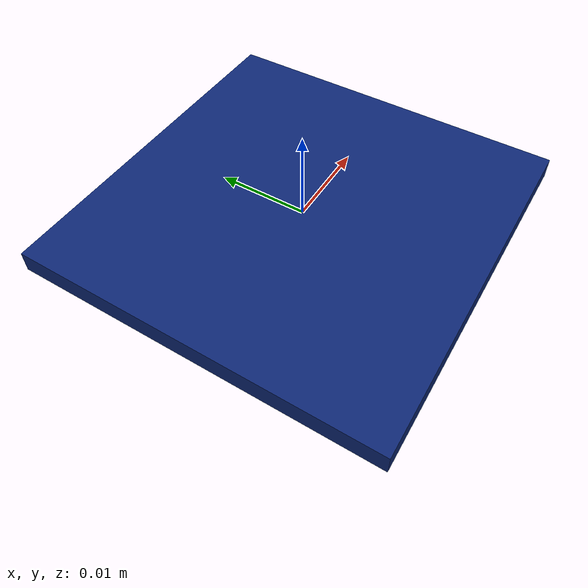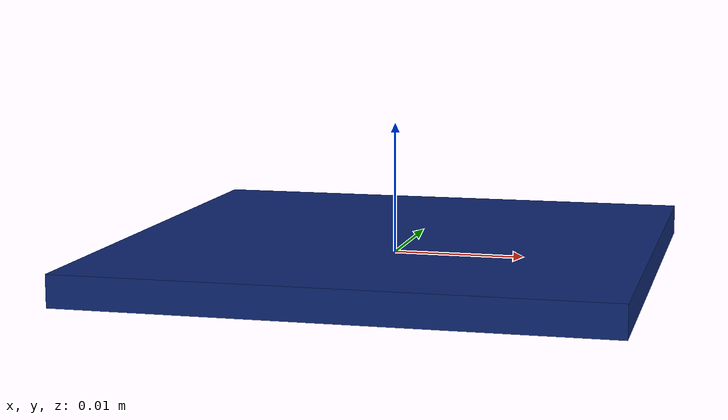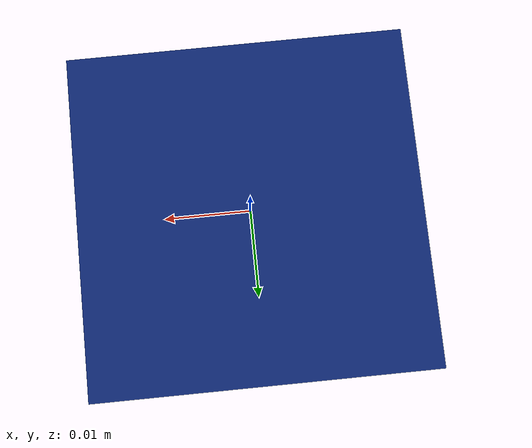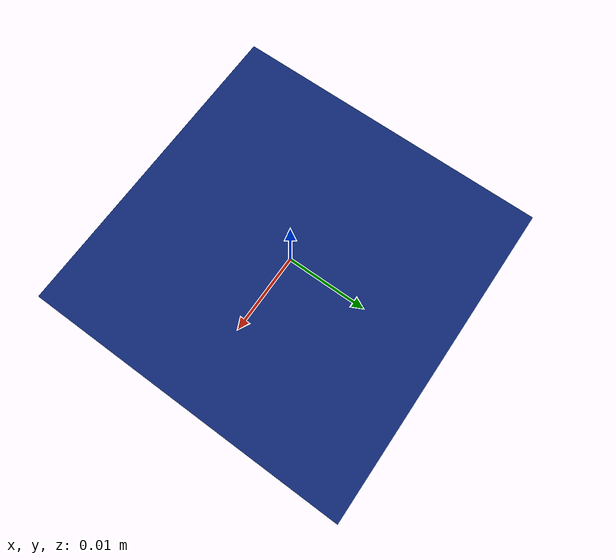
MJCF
<mujoco model="glassSheet">
    <asset>
        <material name="glass_mat" rgba="0.05 0.15 0.45 1.0" specular="1.0" shininess="0.95" reflectance="0.12" />
    </asset>

    <worldbody>
        <body name="glass_sheet" pos="0.000000 0.000000 0.000000">
            <geom name="glass_sheet_geom" type="box" size="0.020000 0.020000 0.001200" material="glass_mat" density="2500" mass="0.003" contype="1" conaffinity="1" />
        </body>
    </worldbody>
</mujoco>
